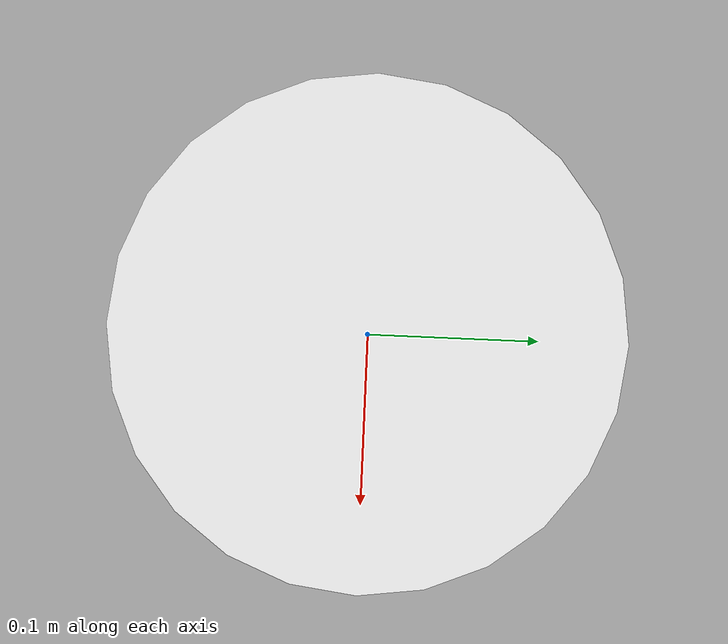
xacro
<?xml version="1.0"?>
<robot name="differential_wheeled_robot" xmlns:xacro="http://www.ros.org/wiki/xacro">

<!-- Defining the colors used in this robot -->
  <material name="Black">
    <color rgba="0.0 0.0 0.0 1.0"/>
  </material>

  <material name="Red">
    <color rgba="0.8 0.0 0.0 1.0"/>
  </material>

  <material name="White">
    <color rgba="1.0 1.0 1.0 1.0"/>
  </material>

  <material name="Blue">
    <color rgba="0.0 0.0 0.8 1.0"/>
  </material>

  <!-- PROPERTY LIST -->
  <!--All units in m-kg-s-radians unit system -->
  <property name="M_PI" value="3.1415926535897931" />
  <property name="M_PI_2" value="1.570796327" />
  <property name="DEG_TO_RAD" value="0.017453293" />

  <!-- Main body radius and height -->
  <!-- Main Body Cylinder base   -->
  <property name="base_height" value="0.02" />
  <property name="base_radius" value="0.15" />
  <property name="base_mass" value="5" /> <!-- in kg-->

  <!-- caster wheel radius and height -->
  <!-- caster wheel mass -->
  <property name="caster_f_height" value="0.04" />
  <property name="caster_f_radius" value="0.025" />
  <property name="caster_f_mass" value="0.5" /> <!-- in kg-->

  <!-- caster wheel radius and height -->
  <!-- caster wheel mass -->
  <property name="caster_b_height" value="0.04" />
  <property name="caster_b_radius" value="0.025" />
  <property name="caster_b_mass" value="0.5" /> <!-- in kg-->

  <!-- Wheels -->

  <property name="wheel_mass" value="2.5" />  <!-- in kg-->

  <property name="base_x_origin_to_wheel_origin" value="0.25" />
  <property name="base_y_origin_to_wheel_origin" value="0.3" />
  <property name="base_z_origin_to_wheel_origin" value="0.0" />

  <!-- Hokuyo Laser scanner -->
  <property name="hokuyo_size" value="0.05" />

  <!-- Macro for calculating inertia of cylinder -->
  <macro name="cylinder_inertia" params="m r h">
    <inertia  ixx="${m*(3*r*r+h*h)/12}" ixy = "0" ixz = "0"
              iyy="${m*(3*r*r+h*h)/12}" iyz = "0"
              izz="${m*r*r/2}" />
  </macro>

  <!-- BASE-LINK -->
  <!--Actual body/chassis of the robot-->
  <link name="base_link">
    <inertial>
      <mass value="${base_mass}" />
      <origin xyz="0 0 0" />
      <!--The 3x3 rotational inertia matrix. -->
      <cylinder_inertia  m="${base_mass}" r="${base_radius}" h="${base_height}" />
    </inertial>
    <visual>
      <origin xyz="0 0 0" rpy="0 0 0" />
      <geometry>
        <cylinder length="${base_height}" radius="${base_radius}" />
      </geometry>
      <material name="White" />
    </visual>
    <collision>
      <origin xyz="0 0 0" rpy="0 0 0 " />
      <geometry>
        <cylinder length="${base_height}" radius="${base_radius}" />
      </geometry>
    </collision>
  </link>
</robot>
